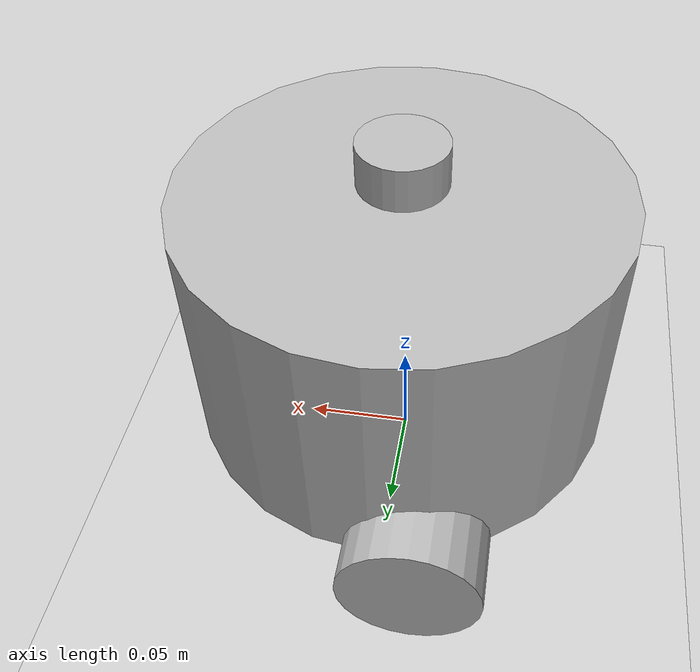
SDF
<sdf version="1.7">
 <world name="default">
  <light name="sun" type="directional">
   <pose>0 0 10 0 -0 0</pose>
   <diffuse>0.8 0.8 0.8 1</diffuse>
   <specular>0.2 0.2 0.2 1</specular>
   <attenuation>
    <range>1000</range>
    <constant>0.9</constant>
    <linear>0.01</linear>
    <quadratic>0.001</quadratic>
   </attenuation>
   <direction>-0.5 0.1 -0.9</direction>
   <spot><inner_angle>0</inner_angle><outer_angle>0</outer_angle><falloff>0</falloff></spot>
  </light>
  <model name="ground_plane">
   <static>1</static>
   <link name="link">
    <collision name="collision">
     <geometry><plane><normal>0 0 1</normal><size>100 100</size></plane></geometry>
     <surface>
      <contact><collide_bitmask>65535</collide_bitmask></contact>
      <friction><ode><mu>100</mu><mu2>50</mu2></ode></friction>
     </surface>
    </collision>
    <visual name="visual">
     <cast_shadows>0</cast_shadows>
     <geometry><plane><normal>0 0 1</normal><size>100 100</size></plane></geometry>
     <material>
      <script><uri>file://media/materials/scripts/gazebo.material</uri><name>Gazebo/Grey</name></script>
     </material>
    </visual>
   </link>
  </model>
  <gravity>0 0 -9.8</gravity>
  <magnetic_field>6e-06 2.3e-05 -4.2e-05</magnetic_field>
  <atmosphere type="adiabatic"/>
  <physics type="ode">
   <max_step_size>0.001</max_step_size>
   <real_time_factor>1</real_time_factor>
   <real_time_update_rate>1000</real_time_update_rate>
  </physics>
  <scene><ambient>0.4 0.4 0.4 1</ambient><background>0.7 0.7 0.7 1</background><shadows>1</shadows></scene>
  <spherical_coordinates>
   <surface_model>EARTH_WGS84</surface_model>
   <latitude_deg>0</latitude_deg>
   <longitude_deg>0</longitude_deg>
   <elevation>0</elevation>
   <heading_deg>0</heading_deg>
  </spherical_coordinates>
  <model name="fishbot">
   <link name="base_footprint">
    <inertial>
     <pose>0.002857 0 0.095 0 -0 0</pose>
     <mass>0.42</mass>
     <inertia>
      <ixx>0.0134043</ixx>
      <ixy>0</ixy>
      <ixz>0.000114</ixz>
      <iyy>0.0134728</iyy>
      <iyz>0</iyz>
      <izz>0.0211486</izz>
     </inertia>
    </inertial>
    <collision name="base_footprint_fixed_joint_lump__base_link_collision">
     <pose>0 0 0.076 0 -0 0</pose>
     <geometry><cylinder><length>0.12</length><radius>0.1</radius></cylinder></geometry>
    </collision>
    <collision name="base_footprint_fixed_joint_lump__caster_link_collision_1">
     <pose>0.06 0 0 1.57079 -0 0</pose>
     <geometry><sphere><radius>0.016</radius></sphere></geometry>
     <surface>
      <contact><ode><kp>1e+06</kp><kd>10</kd></ode></contact>
      <friction><ode><mu>0</mu><mu2>0</mu2></ode></friction>
     </surface>
    </collision>
    <collision name="base_footprint_fixed_joint_lump__imu_link_collision_2">
     <pose>0 0 0.096 0 -0 0</pose>
     <geometry><box><size>0.02 0.02 0.02</size></box></geometry>
    </collision>
    <collision name="base_footprint_fixed_joint_lump__laser_link_collision_3">
     <pose>0 0 0.151 0 -0 0</pose>
     <geometry><cylinder><length>0.02</length><radius>0.02</radius></cylinder></geometry>
    </collision>
    <visual name="base_footprint_fixed_joint_lump__base_link_visual">
     <pose>0 0 0.076 0 -0 0</pose>
     <geometry><cylinder><length>0.12</length><radius>0.1</radius></cylinder></geometry>
    </visual>
    <visual name="base_footprint_fixed_joint_lump__caster_link_visual_1">
     <pose>0.06 0 0 1.57079 -0 0</pose>
     <geometry><sphere><radius>0.016</radius></sphere></geometry>
     <material>
      <script><name>Gazebo/Black</name><uri>file://media/materials/scripts/gazebo.material</uri></script>
     </material>
    </visual>
    <visual name="base_footprint_fixed_joint_lump__imu_link_visual_2">
     <pose>0 0 0.096 0 -0 0</pose>
     <geometry><box><size>0.02 0.02 0.02</size></box></geometry>
    </visual>
    <visual name="base_footprint_fixed_joint_lump__laser_link_visual_3">
     <pose>0 0 0.151 0 -0 0</pose>
     <geometry><cylinder><length>0.02</length><radius>0.02</radius></cylinder></geometry>
    </visual>
    <sensor name="imu_sensor" type="imu">
     <plugin name="imu_plugin" filename="libgazebo_ros_imu_sensor.so">
      <ros><namespace>/</namespace><remapping>~/out:=imu</remapping></ros>
      <initial_orientation_as_reference>0</initial_orientation_as_reference>
     </plugin>
     <always_on>1</always_on>
     <update_rate>100</update_rate>
     <visualize>1</visualize>
     <imu>
      <angular_velocity>
       <x>
        <noise type="gaussian">
         <mean>0</mean>
         <stddev>0.0002</stddev>
         <bias_mean>7.5e-06</bias_mean>
         <bias_stddev>8e-07</bias_stddev>
        </noise>
       </x>
       <y>
        <noise type="gaussian">
         <mean>0</mean>
         <stddev>0.0002</stddev>
         <bias_mean>7.5e-06</bias_mean>
         <bias_stddev>8e-07</bias_stddev>
        </noise>
       </y>
       <z>
        <noise type="gaussian">
         <mean>0</mean>
         <stddev>0.0002</stddev>
         <bias_mean>7.5e-06</bias_mean>
         <bias_stddev>8e-07</bias_stddev>
        </noise>
       </z>
      </angular_velocity>
      <linear_acceleration>
       <x>
        <noise type="gaussian">
         <mean>0</mean>
         <stddev>0.017</stddev>
         <bias_mean>0.1</bias_mean>
         <bias_stddev>0.001</bias_stddev>
        </noise>
       </x>
       <y>
        <noise type="gaussian">
         <mean>0</mean>
         <stddev>0.017</stddev>
         <bias_mean>0.1</bias_mean>
         <bias_stddev>0.001</bias_stddev>
        </noise>
       </y>
       <z>
        <noise type="gaussian">
         <mean>0</mean>
         <stddev>0.017</stddev>
         <bias_mean>0.1</bias_mean>
         <bias_stddev>0.001</bias_stddev>
        </noise>
       </z>
      </linear_acceleration>
     </imu>
     <pose>0 0 0.096 0 -0 0</pose>
    </sensor>
    <sensor name="laser_sensor" type="ray">
     <always_on>1</always_on>
     <visualize>1</visualize>
     <update_rate>10</update_rate>
     <ray>
      <scan>
       <horizontal>
        <samples>360</samples>
        <resolution>1</resolution>
        <min_angle>0</min_angle>
        <max_angle>6.28</max_angle>
       </horizontal>
       <vertical><samples>1</samples><min_angle>0</min_angle><max_angle>0</max_angle></vertical>
      </scan>
      <range><min>0.12</min><max>3.5</max><resolution>0.015</resolution></range>
      <noise><type>gaussian</type><mean>0</mean><stddev>0.01</stddev></noise>
     </ray>
     <plugin name="laserscan" filename="libgazebo_ros_ray_sensor.so">
      <ros><remapping>~/out:=scan</remapping></ros>
      <output_type>sensor_msgs/LaserScan</output_type>
      <frame_name>laser_link</frame_name>
     </plugin>
     <pose>0 0 0.151 0 -0 0</pose>
    </sensor>
   </link>
   <joint name="left_wheel_joint" type="revolute">
    <pose relative_to="base_footprint">-0.02 0.1 0.016 0 -0 0</pose>
    <parent>base_footprint</parent>
    <child>left_wheel_link</child>
    <axis>
     <xyz>0 1 0</xyz>
     <limit><lower>-1e+16</lower><upper>1e+16</upper></limit>
     <dynamics><spring_reference>0</spring_reference><spring_stiffness>0</spring_stiffness></dynamics>
    </axis>
   </joint>
   <link name="left_wheel_link">
    <pose relative_to="left_wheel_joint">0 0 0 0 -0 0</pose>
    <inertial>
     <mass>0.2</mass>
     <inertia>
      <ixx>0.000190417</ixx>
      <ixy>0</ixy>
      <ixz>0</ixz>
      <iyy>0.0001904</iyy>
      <iyz>0</iyz>
      <izz>0.00036</izz>
     </inertia>
    </inertial>
    <collision name="left_wheel_link_collision">
     <pose>0 0 0 1.57079 -0 0</pose>
     <geometry><cylinder><length>0.04</length><radius>0.032</radius></cylinder></geometry>
    </collision>
    <visual name="left_wheel_link_visual">
     <pose>0 0 0 1.57079 -0 0</pose>
     <geometry><cylinder><length>0.04</length><radius>0.032</radius></cylinder></geometry>
    </visual>
   </link>
   <joint name="right_wheel_joint" type="revolute">
    <pose relative_to="base_footprint">-0.02 -0.1 0.016 0 -0 0</pose>
    <parent>base_footprint</parent>
    <child>right_wheel_link</child>
    <axis>
     <xyz>0 1 0</xyz>
     <limit><lower>-1e+16</lower><upper>1e+16</upper></limit>
     <dynamics><spring_reference>0</spring_reference><spring_stiffness>0</spring_stiffness></dynamics>
    </axis>
   </joint>
   <link name="right_wheel_link">
    <pose relative_to="right_wheel_joint">0 0 0 0 -0 0</pose>
    <inertial>
     <mass>0.2</mass>
     <inertia>
      <ixx>0.000190417</ixx>
      <ixy>0</ixy>
      <ixz>0</ixz>
      <iyy>0.0001904</iyy>
      <iyz>0</iyz>
      <izz>0.00036</izz>
     </inertia>
    </inertial>
    <collision name="right_wheel_link_collision">
     <pose>0 0 0 1.57079 -0 0</pose>
     <geometry><cylinder><length>0.04</length><radius>0.032</radius></cylinder></geometry>
    </collision>
    <visual name="right_wheel_link_visual">
     <pose>0 0 0 1.57079 -0 0</pose>
     <geometry><cylinder><length>0.04</length><radius>0.032</radius></cylinder></geometry>
    </visual>
   </link>
   <static>0</static>
   <plugin name="diff_drive" filename="libgazebo_ros_diff_drive.so">
    <ros><namespace>/</namespace><remapping>cmd_vel:=cmd_vel</remapping><remapping>odom:=odom</remapping></ros>
    <update_rate>30</update_rate>
    <left_joint>left_wheel_joint</left_joint>
    <right_joint>right_wheel_joint</right_joint>
    <wheel_separation>0.2</wheel_separation>
    <wheel_diameter>0.065</wheel_diameter>
    <max_wheel_torque>20</max_wheel_torque>
    <max_wheel_acceleration>1.0</max_wheel_acceleration>
    <publish_odom>1</publish_odom>
    <publish_odom_tf>1</publish_odom_tf>
    <publish_wheel_tf>1</publish_wheel_tf>
    <odometry_frame>odom</odometry_frame>
    <robot_base_frame>base_footprint</robot_base_frame>
   </plugin>
   <pose>0.001225 -1.2e-05 0.016 1e-06 1.4e-05 -0.000407</pose>
  </model>
 </world>
</sdf>
